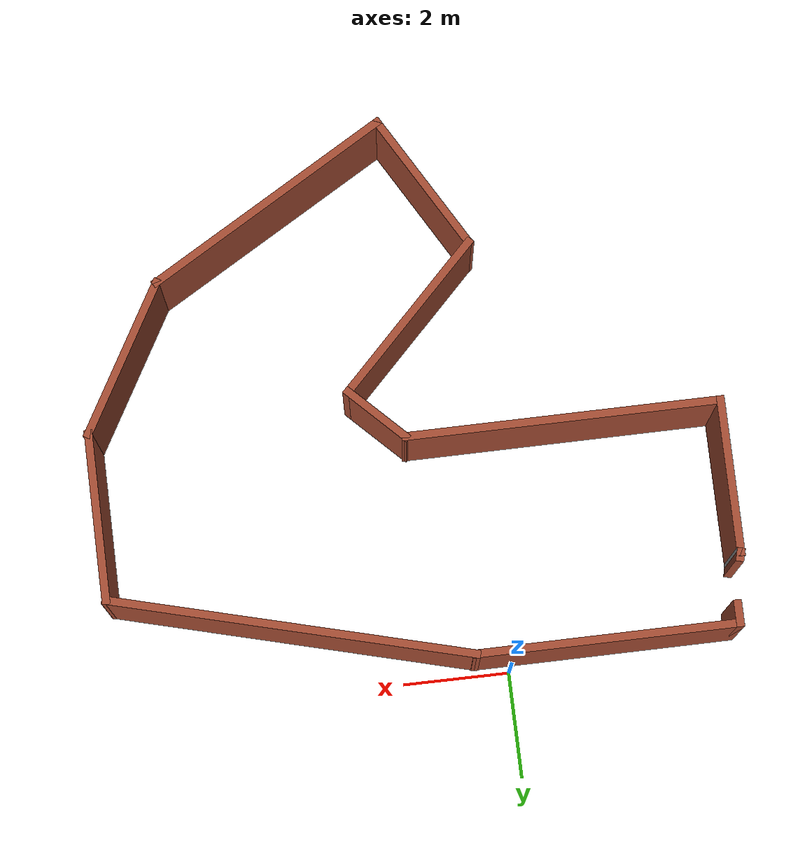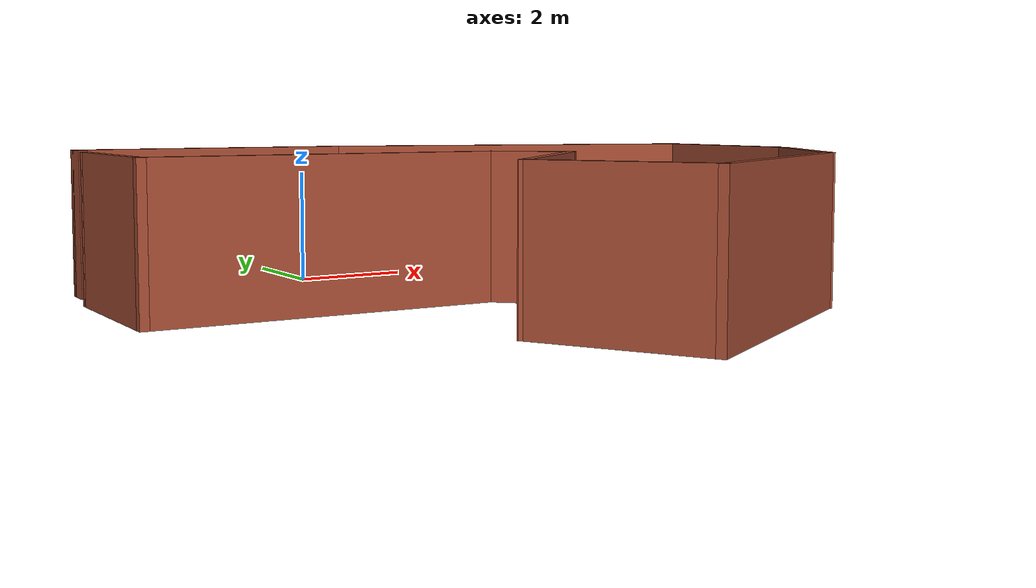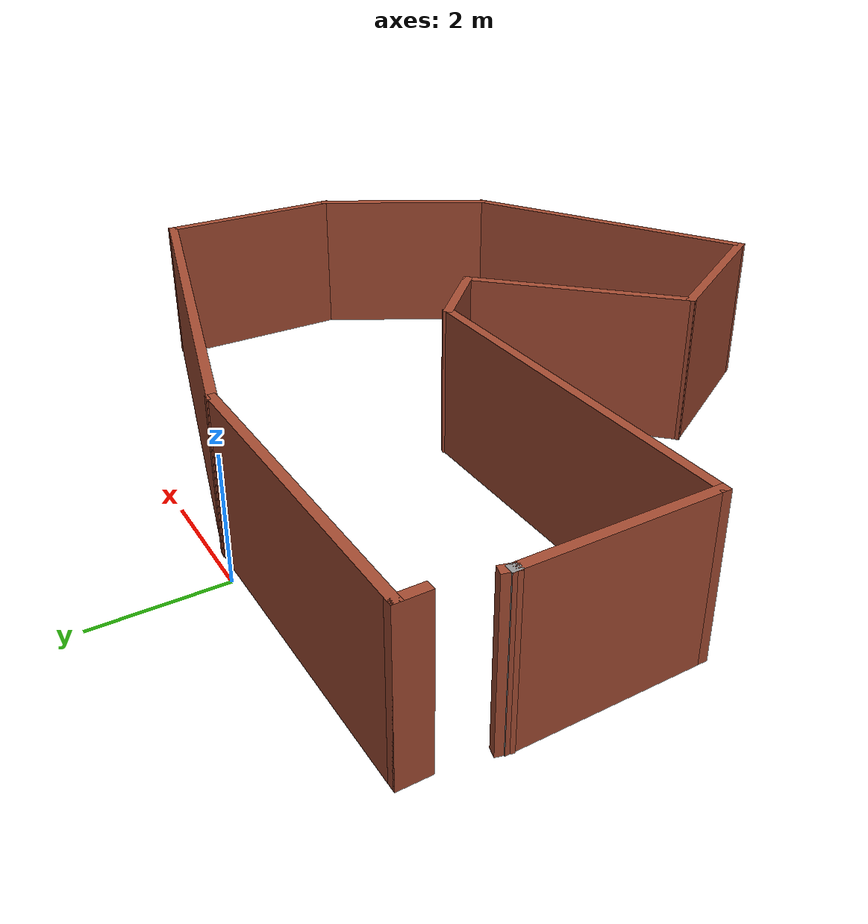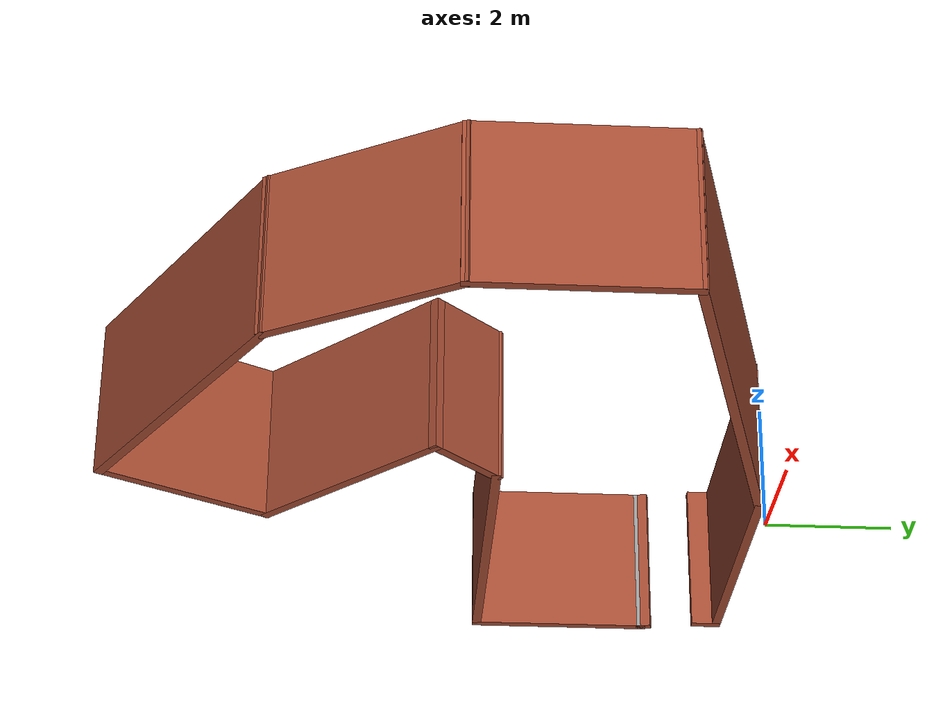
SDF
<?xml version='1.0'?>
<sdf version='1.7'>
  <model name='c-shaped-room'>
    <pose>1.43652 -5.20502 0 0 -0 0</pose>
    <link name='Wall_0'>
      <collision name='Wall_0_Collision'>
        <geometry>
          <box>
            <size>0.5 0.15 2.5</size>
          </box>
        </geometry>
        <pose>0 0 1.25 0 -0 0</pose>
      </collision>
      <visual name='Wall_0_Visual'>
        <pose>0 0 1.25 0 -0 0</pose>
        <geometry>
          <box>
            <size>0.5 0.15 2.5</size>
          </box>
        </geometry>
        <material>
          <script>
            <uri>file://media/materials/scripts/gazebo.material</uri>
            <name>Gazebo/Bricks</name>
          </script>
          <ambient>1 1 1 1</ambient>
        </material>
        <meta>
          <layer>0</layer>
        </meta>
      </visual>
      <pose>-5.64652 4.83002 0 0 -0 1.5708</pose>
    </link>
    <link name='Wall_1'>
      <collision name='Wall_1_Collision'>
        <geometry>
          <box>
            <size>5 0.15 2.5</size>
          </box>
        </geometry>
        <pose>0 0 1.25 0 -0 0</pose>
      </collision>
      <visual name='Wall_1_Visual'>
        <pose>0 0 1.25 0 -0 0</pose>
        <geometry>
          <box>
            <size>5 0.15 2.5</size>
          </box>
        </geometry>
        <material>
          <script>
            <uri>file://media/materials/scripts/gazebo.material</uri>
            <name>Gazebo/Bricks</name>
          </script>
          <ambient>1 1 1 1</ambient>
        </material>
        <meta>
          <layer>0</layer>
        </meta>
      </visual>
      <pose>-3.22152 5.00502 0 0 -0 0</pose>
    </link>
    <link name='Wall_10'>
      <collision name='Wall_10_Collision'>
        <geometry>
          <box>
            <size>3 0.15 2.5</size>
          </box>
        </geometry>
        <pose>0 0 1.25 0 -0 0</pose>
      </collision>
      <visual name='Wall_10_Visual'>
        <pose>0 0 1.25 0 -0 0</pose>
        <geometry>
          <box>
            <size>3 0.15 2.5</size>
          </box>
        </geometry>
        <material>
          <script>
            <uri>file://media/materials/scripts/gazebo.material</uri>
            <name>Gazebo/Bricks</name>
          </script>
          <ambient>1 1 1 1</ambient>
        </material>
        <meta>
          <layer>0</layer>
        </meta>
      </visual>
      <pose>-5.83067 2.29078 0 0 -0 1.5708</pose>
    </link>
    <link name='Wall_11'>
      <collision name='Wall_11_Collision'>
        <geometry>
          <box>
            <size>0.15 0.15 2.5</size>
          </box>
        </geometry>
        <pose>0 0 1.25 0 -0 0</pose>
      </collision>
      <visual name='Wall_11_Visual'>
        <pose>0 0 1.25 0 -0 0</pose>
        <geometry>
          <box>
            <size>0.15 0.15 2.5</size>
          </box>
        </geometry>
        <material>
          <script>
            <uri>file://media/materials/scripts/gazebo.material</uri>
            <name>Gazebo/Grey</name>
          </script>
          <ambient>1 1 1 1</ambient>
        </material>
        <meta>
          <layer>0</layer>
        </meta>
      </visual>
      <pose>-5.83067 3.71578 0 0 -0 0</pose>
    </link>
    <link name='Wall_12'>
      <collision name='Wall_12_Collision'>
        <geometry>
          <box>
            <size>0.25 0.15 2.5</size>
          </box>
        </geometry>
        <pose>0 0 1.25 0 -0 0</pose>
      </collision>
      <visual name='Wall_12_Visual'>
        <pose>0 0 1.25 0 -0 0</pose>
        <geometry>
          <box>
            <size>0.25 0.15 2.5</size>
          </box>
        </geometry>
        <material>
          <script>
            <uri>file://media/materials/scripts/gazebo.material</uri>
            <name>Gazebo/Bricks</name>
          </script>
          <ambient>1 1 1 1</ambient>
        </material>
        <meta>
          <layer>0</layer>
        </meta>
      </visual>
      <pose>-5.81773 3.76408 0 0 -0 1.309</pose>
    </link>
    <link name='Wall_2'>
      <collision name='Wall_2_Collision'>
        <geometry>
          <box>
            <size>7 0.15 2.5</size>
          </box>
        </geometry>
        <pose>0 0 1.25 0 -0 0</pose>
      </collision>
      <visual name='Wall_2_Visual'>
        <pose>0 0 1.25 0 -0 0</pose>
        <geometry>
          <box>
            <size>7 0.15 2.5</size>
          </box>
        </geometry>
        <material>
          <script>
            <uri>file://media/materials/scripts/gazebo.material</uri>
            <name>Gazebo/Bricks</name>
          </script>
          <ambient>1 1 1 1</ambient>
        </material>
        <meta>
          <layer>0</layer>
        </meta>
      </visual>
      <pose>2.51178 4.11857 0 0 -0 -0.261799</pose>
    </link>
    <link name='Wall_3'>
      <collision name='Wall_3_Collision'>
        <geometry>
          <box>
            <size>3.25 0.15 2.5</size>
          </box>
        </geometry>
        <pose>0 0 1.25 0 -0 0</pose>
      </collision>
      <visual name='Wall_3_Visual'>
        <pose>0 0 1.25 0 -0 0</pose>
        <geometry>
          <box>
            <size>3.25 0.15 2.5</size>
          </box>
        </geometry>
        <material>
          <script>
            <uri>file://media/materials/scripts/gazebo.material</uri>
            <name>Gazebo/Bricks</name>
          </script>
          <ambient>1 1 1 1</ambient>
        </material>
        <meta>
          <layer>0</layer>
        </meta>
      </visual>
      <pose>5.82007 1.68211 0 0 -0 -1.5708</pose>
    </link>
    <link name='Wall_4'>
      <collision name='Wall_4_Collision'>
        <geometry>
          <box>
            <size>3.25 0.15 2.5</size>
          </box>
        </geometry>
        <pose>0 0 1.25 0 -0 0</pose>
      </collision>
      <visual name='Wall_4_Visual'>
        <pose>0 0 1.25 0 -0 0</pose>
        <geometry>
          <box>
            <size>3.25 0.15 2.5</size>
          </box>
        </geometry>
        <material>
          <script>
            <uri>file://media/materials/scripts/gazebo.material</uri>
            <name>Gazebo/Bricks</name>
          </script>
          <ambient>1 1 1 1</ambient>
        </material>
        <meta>
          <layer>0</layer>
        </meta>
      </visual>
      <pose>5.04507 -1.21023 0 0 -0 -2.0944</pose>
    </link>
    <link name='Wall_5'>
      <collision name='Wall_5_Collision'>
        <geometry>
          <box>
            <size>5.25 0.15 2.5</size>
          </box>
        </geometry>
        <pose>0 0 1.25 0 -0 0</pose>
      </collision>
      <visual name='Wall_5_Visual'>
        <pose>0 0 1.25 0 -0 0</pose>
        <geometry>
          <box>
            <size>5.25 0.15 2.5</size>
          </box>
        </geometry>
        <material>
          <script>
            <uri>file://media/materials/scripts/gazebo.material</uri>
            <name>Gazebo/Bricks</name>
          </script>
          <ambient>1 1 1 1</ambient>
        </material>
        <meta>
          <layer>0</layer>
        </meta>
      </visual>
      <pose>2.06171 -3.82757 0 0 -0 -2.61799</pose>
    </link>
    <link name='Wall_6'>
      <collision name='Wall_6_Collision'>
        <geometry>
          <box>
            <size>3 0.15 2.5</size>
          </box>
        </geometry>
        <pose>0 0 1.25 0 -0 0</pose>
      </collision>
      <visual name='Wall_6_Visual'>
        <pose>0 0 1.25 0 -0 0</pose>
        <geometry>
          <box>
            <size>3 0.15 2.5</size>
          </box>
        </geometry>
        <material>
          <script>
            <uri>file://media/materials/scripts/gazebo.material</uri>
            <name>Gazebo/Bricks</name>
          </script>
          <ambient>1 1 1 1</ambient>
        </material>
        <meta>
          <layer>0</layer>
        </meta>
      </visual>
      <pose>-0.859158 -3.86848 0 0 -0 2.0944</pose>
    </link>
    <link name='Wall_7'>
      <collision name='Wall_7_Collision'>
        <geometry>
          <box>
            <size>3.75 0.15 2.5</size>
          </box>
        </geometry>
        <pose>0 0 1.25 0 -0 0</pose>
      </collision>
      <visual name='Wall_7_Visual'>
        <pose>0 0 1.25 0 -0 0</pose>
        <geometry>
          <box>
            <size>3.75 0.15 2.5</size>
          </box>
        </geometry>
        <material>
          <script>
            <uri>file://media/materials/scripts/gazebo.material</uri>
            <name>Gazebo/Bricks</name>
          </script>
          <ambient>1 1 1 1</ambient>
        </material>
        <meta>
          <layer>0</layer>
        </meta>
      </visual>
      <pose>-0.298866 -1.3616 0 0 -0 0.785398</pose>
    </link>
    <link name='Wall_8'>
      <collision name='Wall_8_Collision'>
        <geometry>
          <box>
            <size>1.5 0.15 2.5</size>
          </box>
        </geometry>
        <pose>0 0 1.25 0 -0 0</pose>
      </collision>
      <visual name='Wall_8_Visual'>
        <pose>0 0 1.25 0 -0 0</pose>
        <geometry>
          <box>
            <size>1.5 0.15 2.5</size>
          </box>
        </geometry>
        <material>
          <script>
            <uri>file://media/materials/scripts/gazebo.material</uri>
            <name>Gazebo/Bricks</name>
          </script>
          <ambient>1 1 1 1</ambient>
        </material>
        <meta>
          <layer>0</layer>
        </meta>
      </visual>
      <pose>0.49663 0.388485 0 0 -0 2.35619</pose>
    </link>
    <link name='Wall_9'>
      <collision name='Wall_9_Collision'>
        <geometry>
          <box>
            <size>6 0.15 2.5</size>
          </box>
        </geometry>
        <pose>0 0 1.25 0 -0 0</pose>
      </collision>
      <visual name='Wall_9_Visual'>
        <pose>0 0 1.25 0 -0 0</pose>
        <geometry>
          <box>
            <size>6 0.15 2.5</size>
          </box>
        </geometry>
        <material>
          <script>
            <uri>file://media/materials/scripts/gazebo.material</uri>
            <name>Gazebo/Bricks</name>
          </script>
          <ambient>1 1 1 1</ambient>
        </material>
        <meta>
          <layer>0</layer>
        </meta>
      </visual>
      <pose>-2.90567 0.865782 0 0 -0 3.14159</pose>
    </link>
    <static>1</static>
  </model>
</sdf>
